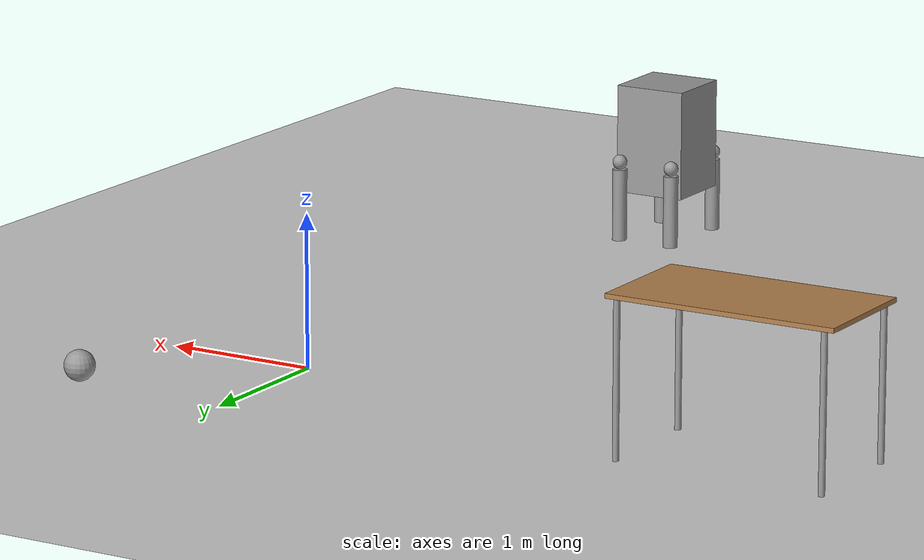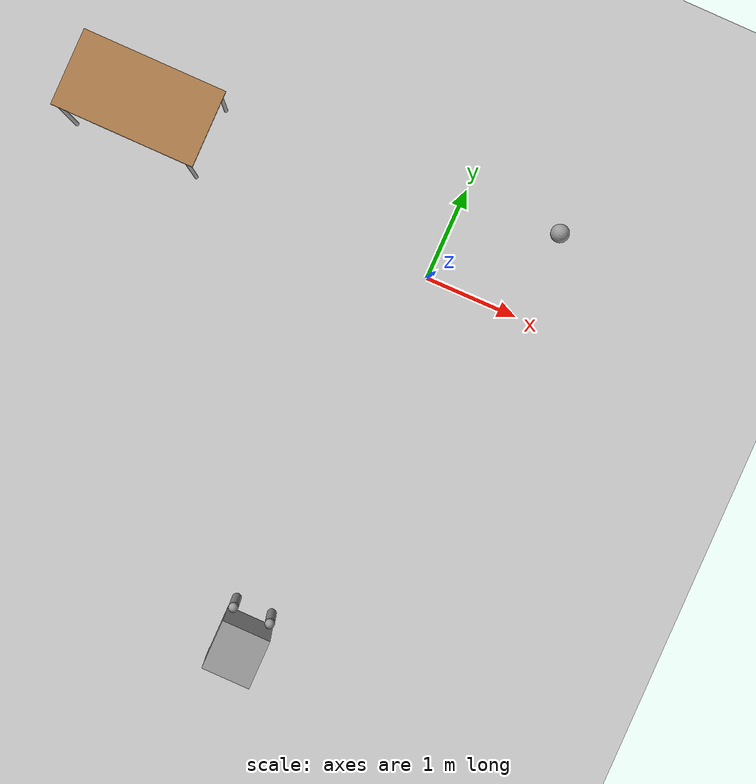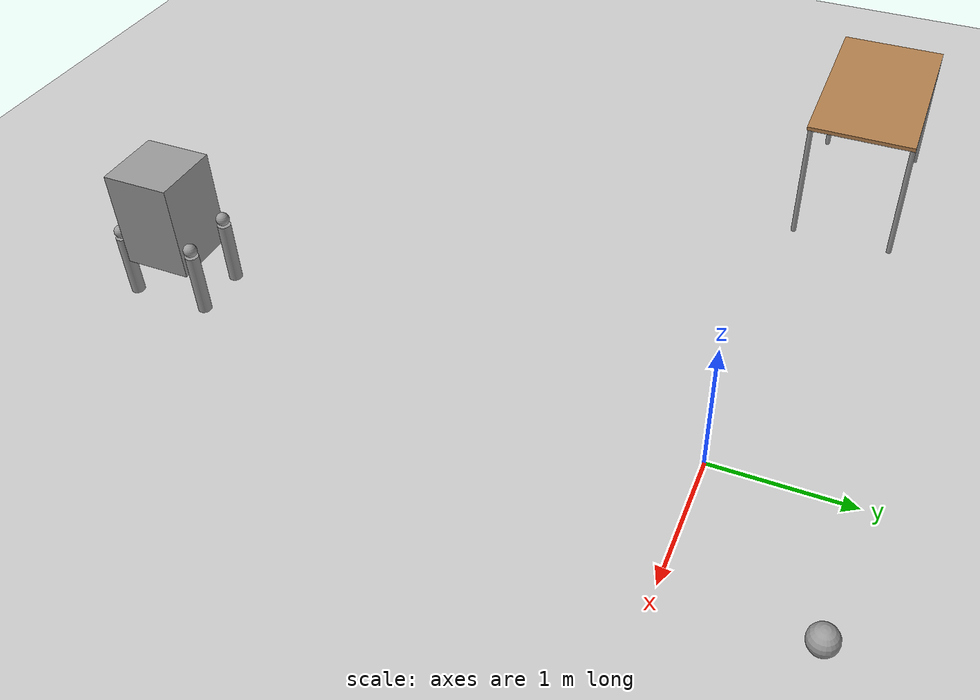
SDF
<sdf version="1.6">
 <world name="default">
  <model name="ground_plane">
   <static>1</static>
   <link name="link">
    <collision name="collision">
     <geometry><plane><normal>0 0 1</normal><size>100 100</size></plane></geometry>
     <surface><friction><ode><mu>100</mu><mu2>50</mu2></ode></friction></surface>
    </collision>
    <visual name="visual">
     <cast_shadows>0</cast_shadows>
     <geometry><plane><normal>0 0 1</normal><size>100 100</size></plane></geometry>
     <material>
      <script><uri>file://media/materials/scripts/gazebo.material</uri><name>Gazebo/Grey</name></script>
     </material>
    </visual>
   </link>
  </model>
  <model name="table">
   <static>1</static>
   <link name="link">
    <collision name="surface">
     <pose>0 0 1 0 -0 0</pose>
     <geometry><box><size>1.5 0.8 0.03</size></box></geometry>
     <surface><friction><ode><mu>0.6</mu><mu2>0.6</mu2></ode></friction></surface>
    </collision>
    <visual name="visual1">
     <pose>0 0 1 0 -0 0</pose>
     <geometry><box><size>1.5 0.8 0.03</size></box></geometry>
     <material>
      <script><uri>file://media/materials/scripts/gazebo.material</uri><name>Gazebo/Wood</name></script>
     </material>
    </visual>
    <collision name="front_left_leg">
     <pose>0.68 0.38 0.5 0 -0 0</pose>
     <geometry><cylinder><radius>0.02</radius><length>1</length></cylinder></geometry>
    </collision>
    <visual name="front_left_leg">
     <pose>0.68 0.38 0.5 0 -0 0</pose>
     <geometry><cylinder><radius>0.02</radius><length>1</length></cylinder></geometry>
     <material>
      <script><uri>file://media/materials/scripts/gazebo.material</uri><name>Gazebo/Grey</name></script>
     </material>
    </visual>
    <collision name="front_right_leg">
     <pose>0.68 -0.38 0.5 0 -0 0</pose>
     <geometry><cylinder><radius>0.02</radius><length>1</length></cylinder></geometry>
    </collision>
    <visual name="front_right_leg">
     <pose>0.68 -0.38 0.5 0 -0 0</pose>
     <geometry><cylinder><radius>0.02</radius><length>1</length></cylinder></geometry>
     <material>
      <script><uri>file://media/materials/scripts/gazebo.material</uri><name>Gazebo/Grey</name></script>
     </material>
    </visual>
    <collision name="back_right_leg">
     <pose>-0.68 -0.38 0.5 0 -0 0</pose>
     <geometry><cylinder><radius>0.02</radius><length>1</length></cylinder></geometry>
    </collision>
    <visual name="back_right_leg">
     <pose>-0.68 -0.38 0.5 0 -0 0</pose>
     <geometry><cylinder><radius>0.02</radius><length>1</length></cylinder></geometry>
     <material>
      <script><uri>file://media/materials/scripts/gazebo.material</uri><name>Gazebo/Grey</name></script>
     </material>
    </visual>
    <collision name="back_left_leg">
     <pose>-0.68 0.38 0.5 0 -0 0</pose>
     <geometry><cylinder><radius>0.02</radius><length>1</length></cylinder></geometry>
    </collision>
    <visual name="back_left_leg">
     <pose>-0.68 0.38 0.5 0 -0 0</pose>
     <geometry><cylinder><radius>0.02</radius><length>1</length></cylinder></geometry>
     <material>
      <script><uri>file://media/materials/scripts/gazebo.material</uri><name>Gazebo/Grey</name></script>
     </material>
    </visual>
   </link>
   <pose>-3.31314 0.360386 0 0 -0 0</pose>
  </model>
  <model name="myhumanoid_0">
   <link name="link_0">
    <pose>5.60089 -1.84381 0.544444 0 -0 0</pose>
    <inertial>
     <mass>1</mass>
     <inertia>
      <ixx>0.166667</ixx>
      <ixy>0</ixy>
      <ixz>0</ixz>
      <iyy>0.166667</iyy>
      <iyz>0</iyz>
      <izz>0.166667</izz>
     </inertia>
     <pose>0 0 0.25 0 -0 0</pose>
    </inertial>
    <visual name="visual">
     <pose>0 0 0.25 0 -0 0</pose>
     <geometry><box><size>0.5 0.5 0.75</size></box></geometry>
     <material>
      <lighting>1</lighting>
      <script><uri>file://media/materials/scripts/gazebo.material</uri><name>Gazebo/Grey</name></script>
      <ambient>0.3 0.3 0.3 1</ambient>
      <diffuse>0.7 0.7 0.7 1</diffuse>
      <specular>0.01 0.01 0.01 1</specular>
      <emissive>0 0 0 1</emissive>
      <shader type="vertex"><normal_map>__default__</normal_map></shader>
     </material>
    </visual>
    <collision name="collision">
     <pose>0 0 0.25 0 -0 0</pose>
     <geometry><box><size>0.5 0.5 0.75</size></box></geometry>
     <surface>
      <friction>
       <ode><mu>1</mu><mu2>1</mu2><fdir1>0 0 0</fdir1><slip1>0</slip1><slip2>0</slip2></ode>
       <torsional>
        <coefficient>1</coefficient>
        <patch_radius>0</patch_radius>
        <surface_radius>0</surface_radius>
        <use_patch_radius>1</use_patch_radius>
        <ode><slip>0</slip></ode>
       </torsional>
      </friction>
      <bounce><restitution_coefficient>0</restitution_coefficient><threshold>1e+06</threshold></bounce>
      <contact>
       <collide_without_contact>0</collide_without_contact>
       <collide_without_contact_bitmask>1</collide_without_contact_bitmask>
       <collide_bitmask>1</collide_bitmask>
       <ode>
        <soft_cfm>0</soft_cfm>
        <soft_erp>0.2</soft_erp>
        <kp>1e+13</kp>
        <kd>1</kd>
        <max_vel>0.01</max_vel>
        <min_depth>0</min_depth>
       </ode>
       <bullet>
        <split_impulse>1</split_impulse>
        <split_impulse_penetration_threshold>-0.01</split_impulse_penetration_threshold>
        <soft_cfm>0</soft_cfm>
        <soft_erp>0.2</soft_erp>
        <kp>1e+13</kp>
        <kd>1</kd>
       </bullet>
      </contact>
     </surface>
    </collision>
   </link>
   <link name="link_1_clone">
    <pose>5.40089 -1.54381 0.644444 0 -0 0</pose>
    <inertial>
     <mass>1</mass>
     <inertia><ixx>0.1</ixx><ixy>0</ixy><ixz>0</ixz><iyy>0.1</iyy><iyz>0</iyz><izz>0.1</izz></inertia>
    </inertial>
    <visual name="visual">
     <geometry><sphere><radius>0.05</radius></sphere></geometry>
     <material>
      <lighting>1</lighting>
      <script><uri>file://media/materials/scripts/gazebo.material</uri><name>Gazebo/Grey</name></script>
      <ambient>0.3 0.3 0.3 1</ambient>
      <diffuse>0.7 0.7 0.7 1</diffuse>
      <specular>0.01 0.01 0.01 1</specular>
      <emissive>0 0 0 1</emissive>
      <shader type="vertex"><normal_map>__default__</normal_map></shader>
     </material>
    </visual>
    <collision name="collision">
     <geometry><sphere><radius>0.05</radius></sphere></geometry>
     <surface>
      <friction>
       <ode><mu>1</mu><mu2>1</mu2><fdir1>0 0 0</fdir1><slip1>0</slip1><slip2>0</slip2></ode>
       <torsional>
        <coefficient>1</coefficient>
        <patch_radius>0</patch_radius>
        <surface_radius>0</surface_radius>
        <use_patch_radius>1</use_patch_radius>
        <ode><slip>0</slip></ode>
       </torsional>
      </friction>
      <bounce><restitution_coefficient>0</restitution_coefficient><threshold>1e+06</threshold></bounce>
      <contact>
       <collide_without_contact>0</collide_without_contact>
       <collide_without_contact_bitmask>1</collide_without_contact_bitmask>
       <collide_bitmask>1</collide_bitmask>
       <ode>
        <soft_cfm>0</soft_cfm>
        <soft_erp>0.2</soft_erp>
        <kp>1e+13</kp>
        <kd>1</kd>
        <max_vel>0.01</max_vel>
        <min_depth>0</min_depth>
       </ode>
       <bullet>
        <split_impulse>1</split_impulse>
        <split_impulse_penetration_threshold>-0.01</split_impulse_penetration_threshold>
        <soft_cfm>0</soft_cfm>
        <soft_erp>0.2</soft_erp>
        <kp>1e+13</kp>
        <kd>1</kd>
       </bullet>
      </contact>
     </surface>
    </collision>
   </link>
   <link name="link_1_clone_clone">
    <pose>5.40089 -2.14381 0.644444 0 -0 0</pose>
    <inertial>
     <mass>1</mass>
     <inertia><ixx>0.1</ixx><ixy>0</ixy><ixz>0</ixz><iyy>0.1</iyy><iyz>0</iyz><izz>0.1</izz></inertia>
    </inertial>
    <visual name="visual">
     <geometry><sphere><radius>0.05</radius></sphere></geometry>
     <material>
      <lighting>1</lighting>
      <script><uri>file://media/materials/scripts/gazebo.material</uri><name>Gazebo/Grey</name></script>
      <ambient>0.3 0.3 0.3 1</ambient>
      <diffuse>0.7 0.7 0.7 1</diffuse>
      <specular>0.01 0.01 0.01 1</specular>
      <emissive>0 0 0 1</emissive>
      <shader type="vertex"><normal_map>__default__</normal_map></shader>
     </material>
    </visual>
    <collision name="collision">
     <geometry><sphere><radius>0.05</radius></sphere></geometry>
     <surface>
      <friction>
       <ode><mu>1</mu><mu2>1</mu2><fdir1>0 0 0</fdir1><slip1>0</slip1><slip2>0</slip2></ode>
       <torsional>
        <coefficient>1</coefficient>
        <patch_radius>0</patch_radius>
        <surface_radius>0</surface_radius>
        <use_patch_radius>1</use_patch_radius>
        <ode><slip>0</slip></ode>
       </torsional>
      </friction>
      <bounce><restitution_coefficient>0</restitution_coefficient><threshold>1e+06</threshold></bounce>
      <contact>
       <collide_without_contact>0</collide_without_contact>
       <collide_without_contact_bitmask>1</collide_without_contact_bitmask>
       <collide_bitmask>1</collide_bitmask>
       <ode>
        <soft_cfm>0</soft_cfm>
        <soft_erp>0.2</soft_erp>
        <kp>1e+13</kp>
        <kd>1</kd>
        <max_vel>0.01</max_vel>
        <min_depth>0</min_depth>
       </ode>
       <bullet>
        <split_impulse>1</split_impulse>
        <split_impulse_penetration_threshold>-0.01</split_impulse_penetration_threshold>
        <soft_cfm>0</soft_cfm>
        <soft_erp>0.2</soft_erp>
        <kp>1e+13</kp>
        <kd>1</kd>
       </bullet>
      </contact>
     </surface>
    </collision>
   </link>
   <link name="link_1_clone_clone_0">
    <pose>5.80089 -2.14381 0.644444 0 -0 0</pose>
    <inertial>
     <mass>1</mass>
     <inertia><ixx>0.1</ixx><ixy>0</ixy><ixz>0</ixz><iyy>0.1</iyy><iyz>0</iyz><izz>0.1</izz></inertia>
    </inertial>
    <visual name="visual">
     <geometry><sphere><radius>0.05</radius></sphere></geometry>
     <material>
      <lighting>1</lighting>
      <script><uri>file://media/materials/scripts/gazebo.material</uri><name>Gazebo/Grey</name></script>
      <ambient>0.3 0.3 0.3 1</ambient>
      <diffuse>0.7 0.7 0.7 1</diffuse>
      <specular>0.01 0.01 0.01 1</specular>
      <emissive>0 0 0 1</emissive>
      <shader type="vertex"><normal_map>__default__</normal_map></shader>
     </material>
    </visual>
    <collision name="collision">
     <geometry><sphere><radius>0.05</radius></sphere></geometry>
     <surface>
      <friction>
       <ode><mu>1</mu><mu2>1</mu2><fdir1>0 0 0</fdir1><slip1>0</slip1><slip2>0</slip2></ode>
       <torsional>
        <coefficient>1</coefficient>
        <patch_radius>0</patch_radius>
        <surface_radius>0</surface_radius>
        <use_patch_radius>1</use_patch_radius>
        <ode><slip>0</slip></ode>
       </torsional>
      </friction>
      <bounce><restitution_coefficient>0</restitution_coefficient><threshold>1e+06</threshold></bounce>
      <contact>
       <collide_without_contact>0</collide_without_contact>
       <collide_without_contact_bitmask>1</collide_without_contact_bitmask>
       <collide_bitmask>1</collide_bitmask>
       <ode>
        <soft_cfm>0</soft_cfm>
        <soft_erp>0.2</soft_erp>
        <kp>1e+13</kp>
        <kd>1</kd>
        <max_vel>0.01</max_vel>
        <min_depth>0</min_depth>
       </ode>
       <bullet>
        <split_impulse>1</split_impulse>
        <split_impulse_penetration_threshold>-0.01</split_impulse_penetration_threshold>
        <soft_cfm>0</soft_cfm>
        <soft_erp>0.2</soft_erp>
        <kp>1e+13</kp>
        <kd>1</kd>
       </bullet>
      </contact>
     </surface>
    </collision>
   </link>
   <link name="link_1_clone_clone_1">
    <pose>5.80089 -1.54381 0.644444 0 -0 0</pose>
    <inertial>
     <mass>1</mass>
     <inertia><ixx>0.1</ixx><ixy>0</ixy><ixz>0</ixz><iyy>0.1</iyy><iyz>0</iyz><izz>0.1</izz></inertia>
    </inertial>
    <visual name="visual">
     <geometry><sphere><radius>0.05</radius></sphere></geometry>
     <material>
      <lighting>1</lighting>
      <script><uri>file://media/materials/scripts/gazebo.material</uri><name>Gazebo/Grey</name></script>
      <ambient>0.3 0.3 0.3 1</ambient>
      <diffuse>0.7 0.7 0.7 1</diffuse>
      <specular>0.01 0.01 0.01 1</specular>
      <emissive>0 0 0 1</emissive>
      <shader type="vertex"><normal_map>__default__</normal_map></shader>
     </material>
    </visual>
    <collision name="collision">
     <geometry><sphere><radius>0.05</radius></sphere></geometry>
     <surface>
      <friction>
       <ode><mu>1</mu><mu2>1</mu2><fdir1>0 0 0</fdir1><slip1>0</slip1><slip2>0</slip2></ode>
       <torsional>
        <coefficient>1</coefficient>
        <patch_radius>0</patch_radius>
        <surface_radius>0</surface_radius>
        <use_patch_radius>1</use_patch_radius>
        <ode><slip>0</slip></ode>
       </torsional>
      </friction>
      <bounce><restitution_coefficient>0</restitution_coefficient><threshold>1e+06</threshold></bounce>
      <contact>
       <collide_without_contact>0</collide_without_contact>
       <collide_without_contact_bitmask>1</collide_without_contact_bitmask>
       <collide_bitmask>1</collide_bitmask>
       <ode>
        <soft_cfm>0</soft_cfm>
        <soft_erp>0.2</soft_erp>
        <kp>1e+13</kp>
        <kd>1</kd>
        <max_vel>0.01</max_vel>
        <min_depth>0</min_depth>
       </ode>
       <bullet>
        <split_impulse>1</split_impulse>
        <split_impulse_penetration_threshold>-0.01</split_impulse_penetration_threshold>
        <soft_cfm>0</soft_cfm>
        <soft_erp>0.2</soft_erp>
        <kp>1e+13</kp>
        <kd>1</kd>
       </bullet>
      </contact>
     </surface>
    </collision>
   </link>
   <link name="link_2_clone">
    <pose>5.40089 -1.54381 0.344444 0 -0 0</pose>
    <inertial>
     <mass>1</mass>
     <inertia><ixx>0.145833</ixx><ixy>0</ixy><ixz>0</ixz><iyy>0.145833</iyy><iyz>0</iyz><izz>0.125</izz></inertia>
    </inertial>
    <visual name="visual">
     <geometry><cylinder><radius>0.05</radius><length>0.5</length></cylinder></geometry>
     <material>
      <lighting>1</lighting>
      <script><uri>file://media/materials/scripts/gazebo.material</uri><name>Gazebo/Grey</name></script>
      <ambient>0.3 0.3 0.3 1</ambient>
      <diffuse>0.7 0.7 0.7 1</diffuse>
      <specular>0.01 0.01 0.01 1</specular>
      <emissive>0 0 0 1</emissive>
      <shader type="vertex"><normal_map>__default__</normal_map></shader>
     </material>
    </visual>
    <collision name="collision">
     <geometry><cylinder><radius>0.05</radius><length>0.5</length></cylinder></geometry>
     <surface>
      <friction>
       <ode><mu>1</mu><mu2>1</mu2><fdir1>0 0 0</fdir1><slip1>0</slip1><slip2>0</slip2></ode>
       <torsional>
        <coefficient>1</coefficient>
        <patch_radius>0</patch_radius>
        <surface_radius>0</surface_radius>
        <use_patch_radius>1</use_patch_radius>
        <ode><slip>0</slip></ode>
       </torsional>
      </friction>
      <bounce><restitution_coefficient>0</restitution_coefficient><threshold>1e+06</threshold></bounce>
      <contact>
       <collide_without_contact>0</collide_without_contact>
       <collide_without_contact_bitmask>1</collide_without_contact_bitmask>
       <collide_bitmask>1</collide_bitmask>
       <ode>
        <soft_cfm>0</soft_cfm>
        <soft_erp>0.2</soft_erp>
        <kp>1e+13</kp>
        <kd>1</kd>
        <max_vel>0.01</max_vel>
        <min_depth>0</min_depth>
       </ode>
       <bullet>
        <split_impulse>1</split_impulse>
        <split_impulse_penetration_threshold>-0.01</split_impulse_penetration_threshold>
        <soft_cfm>0</soft_cfm>
        <soft_erp>0.2</soft_erp>
        <kp>1e+13</kp>
        <kd>1</kd>
       </bullet>
      </contact>
     </surface>
    </collision>
   </link>
   <link name="link_2_clone_clone">
    <pose>5.40089 -2.14381 0.344444 0 -0 0</pose>
    <inertial>
     <mass>1</mass>
     <inertia><ixx>0.145833</ixx><ixy>0</ixy><ixz>0</ixz><iyy>0.145833</iyy><iyz>0</iyz><izz>0.125</izz></inertia>
    </inertial>
    <visual name="visual">
     <geometry><cylinder><radius>0.05</radius><length>0.5</length></cylinder></geometry>
     <material>
      <lighting>1</lighting>
      <script><uri>file://media/materials/scripts/gazebo.material</uri><name>Gazebo/Grey</name></script>
      <ambient>0.3 0.3 0.3 1</ambient>
      <diffuse>0.7 0.7 0.7 1</diffuse>
      <specular>0.01 0.01 0.01 1</specular>
      <emissive>0 0 0 1</emissive>
      <shader type="vertex"><normal_map>__default__</normal_map></shader>
     </material>
    </visual>
    <collision name="collision">
     <geometry><cylinder><radius>0.05</radius><length>0.5</length></cylinder></geometry>
     <surface>
      <friction>
       <ode><mu>1</mu><mu2>1</mu2><fdir1>0 0 0</fdir1><slip1>0</slip1><slip2>0</slip2></ode>
       <torsional>
        <coefficient>1</coefficient>
        <patch_radius>0</patch_radius>
        <surface_radius>0</surface_radius>
        <use_patch_radius>1</use_patch_radius>
        <ode><slip>0</slip></ode>
       </torsional>
      </friction>
      <bounce><restitution_coefficient>0</restitution_coefficient><threshold>1e+06</threshold></bounce>
      <contact>
       <collide_without_contact>0</collide_without_contact>
       <collide_without_contact_bitmask>1</collide_without_contact_bitmask>
       <collide_bitmask>1</collide_bitmask>
       <ode>
        <soft_cfm>0</soft_cfm>
        <soft_erp>0.2</soft_erp>
        <kp>1e+13</kp>
        <kd>1</kd>
        <max_vel>0.01</max_vel>
        <min_depth>0</min_depth>
       </ode>
       <bullet>
        <split_impulse>1</split_impulse>
        <split_impulse_penetration_threshold>-0.01</split_impulse_penetration_threshold>
        <soft_cfm>0</soft_cfm>
        <soft_erp>0.2</soft_erp>
        <kp>1e+13</kp>
        <kd>1</kd>
       </bullet>
      </contact>
     </surface>
    </collision>
   </link>
   <link name="link_2_clone_clone_0">
    <pose>5.80089 -2.14381 0.344444 0 -0 0</pose>
    <inertial>
     <mass>1</mass>
     <inertia><ixx>0.145833</ixx><ixy>0</ixy><ixz>0</ixz><iyy>0.145833</iyy><iyz>0</iyz><izz>0.125</izz></inertia>
    </inertial>
    <visual name="visual">
     <geometry><cylinder><radius>0.05</radius><length>0.5</length></cylinder></geometry>
     <material>
      <lighting>1</lighting>
      <script><uri>file://media/materials/scripts/gazebo.material</uri><name>Gazebo/Grey</name></script>
      <ambient>0.3 0.3 0.3 1</ambient>
      <diffuse>0.7 0.7 0.7 1</diffuse>
      <specular>0.01 0.01 0.01 1</specular>
      <emissive>0 0 0 1</emissive>
      <shader type="vertex"><normal_map>__default__</normal_map></shader>
     </material>
    </visual>
    <collision name="collision">
     <geometry><cylinder><radius>0.05</radius><length>0.5</length></cylinder></geometry>
     <surface>
      <friction>
       <ode><mu>1</mu><mu2>1</mu2><fdir1>0 0 0</fdir1><slip1>0</slip1><slip2>0</slip2></ode>
       <torsional>
        <coefficient>1</coefficient>
        <patch_radius>0</patch_radius>
        <surface_radius>0</surface_radius>
        <use_patch_radius>1</use_patch_radius>
        <ode><slip>0</slip></ode>
       </torsional>
      </friction>
      <bounce><restitution_coefficient>0</restitution_coefficient><threshold>1e+06</threshold></bounce>
      <contact>
       <collide_without_contact>0</collide_without_contact>
       <collide_without_contact_bitmask>1</collide_without_contact_bitmask>
       <collide_bitmask>1</collide_bitmask>
       <ode>
        <soft_cfm>0</soft_cfm>
        <soft_erp>0.2</soft_erp>
        <kp>1e+13</kp>
        <kd>1</kd>
        <max_vel>0.01</max_vel>
        <min_depth>0</min_depth>
       </ode>
       <bullet>
        <split_impulse>1</split_impulse>
        <split_impulse_penetration_threshold>-0.01</split_impulse_penetration_threshold>
        <soft_cfm>0</soft_cfm>
        <soft_erp>0.2</soft_erp>
        <kp>1e+13</kp>
        <kd>1</kd>
       </bullet>
      </contact>
     </surface>
    </collision>
   </link>
   <link name="link_2_clone_clone_1">
    <pose>5.80089 -1.54381 0.344444 0 -0 0</pose>
    <inertial>
     <mass>1</mass>
     <inertia><ixx>0.145833</ixx><ixy>0</ixy><ixz>0</ixz><iyy>0.145833</iyy><iyz>0</iyz><izz>0.125</izz></inertia>
    </inertial>
    <visual name="visual">
     <geometry><cylinder><radius>0.05</radius><length>0.5</length></cylinder></geometry>
     <material>
      <lighting>1</lighting>
      <script><uri>file://media/materials/scripts/gazebo.material</uri><name>Gazebo/Grey</name></script>
      <ambient>0.3 0.3 0.3 1</ambient>
      <diffuse>0.7 0.7 0.7 1</diffuse>
      <specular>0.01 0.01 0.01 1</specular>
      <emissive>0 0 0 1</emissive>
      <shader type="vertex"><normal_map>__default__</normal_map></shader>
     </material>
    </visual>
    <collision name="collision">
     <geometry><cylinder><radius>0.05</radius><length>0.5</length></cylinder></geometry>
     <surface>
      <friction>
       <ode><mu>1</mu><mu2>1</mu2><fdir1>0 0 0</fdir1><slip1>0</slip1><slip2>0</slip2></ode>
       <torsional>
        <coefficient>1</coefficient>
        <patch_radius>0</patch_radius>
        <surface_radius>0</surface_radius>
        <use_patch_radius>1</use_patch_radius>
        <ode><slip>0</slip></ode>
       </torsional>
      </friction>
      <bounce><restitution_coefficient>0</restitution_coefficient><threshold>1e+06</threshold></bounce>
      <contact>
       <collide_without_contact>0</collide_without_contact>
       <collide_without_contact_bitmask>1</collide_without_contact_bitmask>
       <collide_bitmask>1</collide_bitmask>
       <ode>
        <soft_cfm>0</soft_cfm>
        <soft_erp>0.2</soft_erp>
        <kp>1e+13</kp>
        <kd>1</kd>
        <max_vel>0.01</max_vel>
        <min_depth>0</min_depth>
       </ode>
       <bullet>
        <split_impulse>1</split_impulse>
        <split_impulse_penetration_threshold>-0.01</split_impulse_penetration_threshold>
        <soft_cfm>0</soft_cfm>
        <soft_erp>0.2</soft_erp>
        <kp>1e+13</kp>
        <kd>1</kd>
       </bullet>
      </contact>
     </surface>
    </collision>
   </link>
   <joint name="link_0_JOINT_0" type="revolute">
    <parent>link_0</parent>
    <child>link_1_clone</child>
    <axis>
     <xyz>0 -1 0</xyz>
     <use_parent_model_frame>0</use_parent_model_frame>
     <limit>
      <lower>-1.79769e+308</lower>
      <upper>1.79769e+308</upper>
      <effort>-1</effort>
      <velocity>-1</velocity>
     </limit>
     <dynamics>
      <spring_reference>0</spring_reference>
      <spring_stiffness>0</spring_stiffness>
      <damping>0</damping>
      <friction>0</friction>
     </dynamics>
    </axis>
    <physics>
     <ode><limit><cfm>0</cfm><erp>0.2</erp></limit><suspension><cfm>0</cfm><erp>0.2</erp></suspension></ode>
    </physics>
   </joint>
   <joint name="link_0_JOINT_1" type="revolute">
    <parent>link_0</parent>
    <child>link_1_clone_clone</child>
    <axis>
     <xyz>0 1 0</xyz>
     <use_parent_model_frame>0</use_parent_model_frame>
     <limit>
      <lower>-1.79769e+308</lower>
      <upper>1.79769e+308</upper>
      <effort>-1</effort>
      <velocity>-1</velocity>
     </limit>
     <dynamics>
      <spring_reference>0</spring_reference>
      <spring_stiffness>0</spring_stiffness>
      <damping>0</damping>
     </dynamics>
    </axis>
    <physics>
     <ode><limit><cfm>0</cfm><erp>0.2</erp></limit><suspension><cfm>0</cfm><erp>0.2</erp></suspension></ode>
    </physics>
   </joint>
   <joint name="link_0_JOINT_2" type="revolute">
    <parent>link_0</parent>
    <child>link_1_clone_clone_0</child>
    <axis>
     <xyz>0 1 0</xyz>
     <use_parent_model_frame>0</use_parent_model_frame>
     <limit>
      <lower>-1.79769e+308</lower>
      <upper>1.79769e+308</upper>
      <effort>-1</effort>
      <velocity>-1</velocity>
     </limit>
     <dynamics>
      <spring_reference>0</spring_reference>
      <spring_stiffness>0</spring_stiffness>
      <damping>0</damping>
     </dynamics>
    </axis>
    <physics>
     <ode><limit><cfm>0</cfm><erp>0.2</erp></limit><suspension><cfm>0</cfm><erp>0.2</erp></suspension></ode>
    </physics>
   </joint>
   <joint name="link_0_JOINT_3" type="revolute">
    <parent>link_0</parent>
    <child>link_1_clone_clone_1</child>
    <axis>
     <xyz>0 -1 0</xyz>
     <use_parent_model_frame>0</use_parent_model_frame>
     <limit>
      <lower>-1.79769e+308</lower>
      <upper>1.79769e+308</upper>
      <effort>-1</effort>
      <velocity>-1</velocity>
     </limit>
     <dynamics>
      <spring_reference>0</spring_reference>
      <spring_stiffness>0</spring_stiffness>
      <damping>0</damping>
     </dynamics>
    </axis>
    <physics>
     <ode><limit><cfm>0</cfm><erp>0.2</erp></limit><suspension><cfm>0</cfm><erp>0.2</erp></suspension></ode>
    </physics>
   </joint>
   <joint name="link_1_clone_JOINT_4" type="fixed">
    <parent>link_1_clone</parent>
    <child>link_2_clone</child>
    <physics>
     <ode><limit><cfm>0</cfm><erp>0.2</erp></limit><suspension><cfm>0</cfm><erp>0.2</erp></suspension></ode>
    </physics>
   </joint>
   <joint name="link_1_clone_clone_0_JOINT_6" type="fixed">
    <parent>link_1_clone_clone_0</parent>
    <child>link_2_clone_clone_0</child>
    <physics>
     <ode><limit><cfm>0</cfm><erp>0.2</erp></limit><suspension><cfm>0</cfm><erp>0.2</erp></suspension></ode>
    </physics>
   </joint>
   <joint name="link_1_clone_clone_1_JOINT_7" type="fixed">
    <parent>link_1_clone_clone_1</parent>
    <child>link_2_clone_clone_1</child>
    <physics>
     <ode><limit><cfm>0</cfm><erp>0.2</erp></limit><suspension><cfm>0</cfm><erp>0.2</erp></suspension></ode>
    </physics>
   </joint>
   <joint name="link_1_clone_clone_JOINT_5" type="fixed">
    <parent>link_1_clone_clone</parent>
    <child>link_2_clone_clone</child>
    <physics>
     <ode><limit><cfm>0</cfm><erp>0.2</erp></limit><suspension><cfm>0</cfm><erp>0.2</erp></suspension></ode>
    </physics>
   </joint>
   <static>0</static>
   <pose>-5.86079 -2.31265 -0.094444 0 0 -0.000756</pose>
  </model>
  <model name="my_ball">
   <link name="link_0">
    <inertial>
     <mass>1</mass>
     <inertia><ixx>0.1</ixx><ixy>0</ixy><ixz>0</ixz><iyy>0.1</iyy><iyz>0</iyz><izz>0.1</izz></inertia>
    </inertial>
    <visual name="visual">
     <geometry><sphere><radius>0.1</radius></sphere></geometry>
     <material>
      <lighting>1</lighting>
      <script><uri>file://media/materials/scripts/gazebo.material</uri><name>Gazebo/Grey</name></script>
      <ambient>1 1 1 1</ambient>
      <diffuse>1 1 1 1</diffuse>
      <specular>1 1 1 1</specular>
      <emissive>1 1 1 1</emissive>
      <shader type="vertex"><normal_map>__default__</normal_map></shader>
     </material>
    </visual>
    <collision name="collision">
     <geometry><sphere><radius>0.1</radius></sphere></geometry>
     <surface>
      <friction>
       <ode><mu>1</mu><mu2>1</mu2><fdir1>0 0 0</fdir1><slip1>0</slip1><slip2>0</slip2></ode>
       <torsional>
        <coefficient>1</coefficient>
        <patch_radius>0</patch_radius>
        <surface_radius>0</surface_radius>
        <use_patch_radius>1</use_patch_radius>
        <ode><slip>0</slip></ode>
       </torsional>
      </friction>
      <bounce><restitution_coefficient>0</restitution_coefficient><threshold>1e+06</threshold></bounce>
      <contact>
       <collide_without_contact>0</collide_without_contact>
       <collide_without_contact_bitmask>1</collide_without_contact_bitmask>
       <collide_bitmask>1</collide_bitmask>
       <ode>
        <soft_cfm>0</soft_cfm>
        <soft_erp>0.2</soft_erp>
        <kp>1e+13</kp>
        <kd>1</kd>
        <max_vel>0.01</max_vel>
        <min_depth>0</min_depth>
       </ode>
       <bullet>
        <split_impulse>1</split_impulse>
        <split_impulse_penetration_threshold>-0.01</split_impulse_penetration_threshold>
        <soft_cfm>0</soft_cfm>
        <soft_erp>0.2</soft_erp>
        <kp>1e+13</kp>
        <kd>1</kd>
       </bullet>
      </contact>
     </surface>
    </collision>
   </link>
   <static>0</static>
   <pose>1.06125 0.971337 0.1 0 -0 0</pose>
  </model>
 </world>
</sdf>
